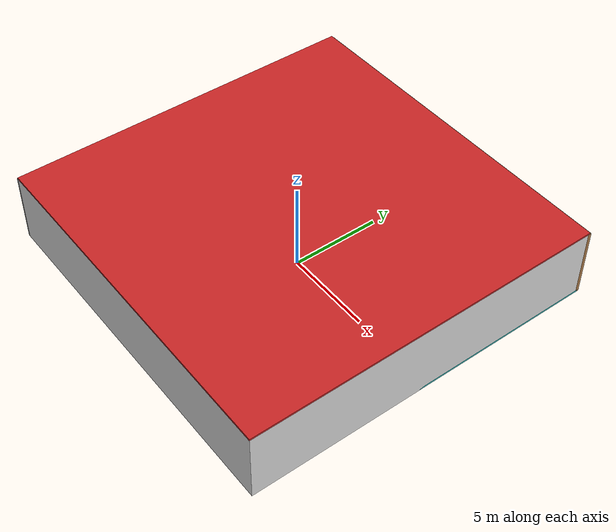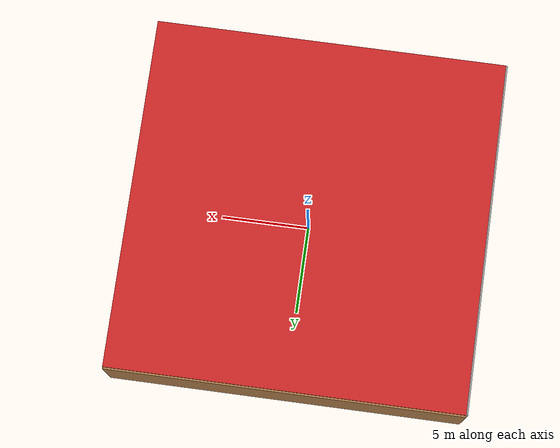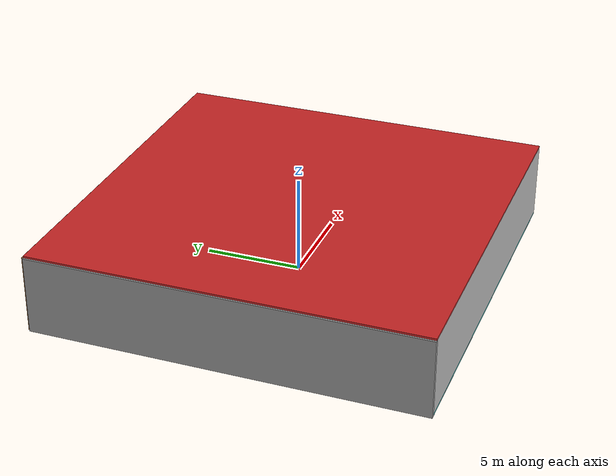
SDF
<sdf version="1.4">
 <world name="default">
  <physics type="ode">
   <max_step_size>0.001</max_step_size>
   <real_time_factor>1</real_time_factor>
   <real_time_update_rate>1000</real_time_update_rate>
   <gravity>0 0 -9.8</gravity>
  </physics>
  <scene><ambient>0.4 0.4 0.4 1</ambient><background>0.7 0.7 0.7 1</background><shadows>1</shadows></scene>
  <model name="Surrounding">
   <static>1</static>
   <link name="Ceiling">
    <collision name="Ceiling_Collision"><geometry><box><size>20 20 0.1</size></box></geometry></collision>
    <visual name="Ceiling_Visual">
     <geometry><box><size>20 20 0.1</size></box></geometry>
     <material>
      <script><uri>file://media/materials/scripts/gazebo.material</uri><name>Gazebo/Red</name></script>
     </material>
    </visual>
    <pose>0 0 4.05 0 0 0</pose>
   </link>
   <link name="Wall_South">
    <collision name="Wall_South_Collision">
     <geometry><box><size>20 0 4</size></box></geometry>
     <pose>0 0 2 0 -0 0</pose>
    </collision>
    <visual name="Wall_South_Visual">
     <pose>0 0 2 0 -0 0</pose>
     <geometry><box><size>20 0 4</size></box></geometry>
     <material>
      <script><uri>file://media/materials/scripts/gazebo.material</uri><name>Gazebo/PioneerBody</name></script>
     </material>
    </visual>
    <velocity_decay><linear>0</linear><angular>0</angular></velocity_decay>
    <pose>0 -10 0 0 -0 0</pose>
   </link>
   <link name="Wall_East">
    <collision name="Wall_21_Collision">
     <geometry><box><size>20 0 4</size></box></geometry>
     <pose>0 0 2 0 -0 0</pose>
    </collision>
    <visual name="Wall_21_Visual">
     <pose>0 0 2 0 -0 0</pose>
     <geometry><box><size>20 0 4</size></box></geometry>
     <material>
      <script><uri>file://media/materials/scripts/gazebo.material</uri><name>Gazebo/White</name></script>
     </material>
    </visual>
    <velocity_decay><linear>0</linear><angular>0</angular></velocity_decay>
    <pose>10 0 0 0 -0 1.5708</pose>
   </link>
   <link name="Wall_North">
    <collision name="Wall_22_Collision">
     <geometry><box><size>20 0.2 4</size></box></geometry>
     <pose>0 0 2 0 -0 0</pose>
    </collision>
    <visual name="Wall_22_Visual">
     <pose>0 0 2 0 -0 0</pose>
     <geometry><box><size>20 0.2 4</size></box></geometry>
     <material>
      <script><uri>file://media/materials/scripts/gazebo.material</uri><name>Gazebo/WoodFloor</name></script>
     </material>
    </visual>
    <velocity_decay><linear>0</linear><angular>0</angular></velocity_decay>
    <pose>0 10 0 0 -0 0</pose>
   </link>
   <link name="Wall_West">
    <collision name="Wall_23_Collision">
     <geometry><box><size>20 0.2 4</size></box></geometry>
     <pose>0 0 2 0 -0 0</pose>
    </collision>
    <visual name="Wall_23_Visual">
     <pose>0 0 2 0 -0 0</pose>
     <geometry><box><size>20 0.2 4</size></box></geometry>
     <material>
      <script><uri>file://media/materials/scripts/gazebo.material</uri><name>Gazebo/GreyGradientSky</name></script>
     </material>
    </visual>
    <velocity_decay><linear>0</linear><angular>0</angular></velocity_decay>
    <pose>-10 0 0 0 0 -1.5708</pose>
   </link>
   <link name="Ground_link">
    <collision name="collision">
     <pose>0 0 .05 0 -0 0</pose>
     <geometry><box><size>20 20 0.1</size></box></geometry>
    </collision>
    <visual name="visual">
     <pose>0 0 .05 0 -0 0</pose>
     <geometry><box><size>20 20 0.1</size></box></geometry>
     <material>
      <script><uri>file://media/materials/scripts/gazebo.material</uri><name>Gazebo/Turquoise</name></script>
     </material>
    </visual>
   </link>
   <static>1</static>
  </model>
  <spherical_coordinates>
   <surface_model>EARTH_WGS84</surface_model>
   <latitude_deg>0</latitude_deg>
   <longitude_deg>0</longitude_deg>
   <elevation>0</elevation>
   <heading_deg>0</heading_deg>
  </spherical_coordinates>
  <light name="lightball_0" type="diffuse">
   <diffuse>0.8 0.8 0.8 1</diffuse>
   <specular>0.2 0.2 0.2 1</specular>
   <attenuation>
    <range>100</range>
    <constant>0.7</constant>
    <linear>0.01</linear>
    <quadratic>0.001</quadratic>
   </attenuation>
   <direction>-0.5 0.1 -0.9</direction>
   <pose>-8.73605735671 4.80617238505 2.11559267147 0 0 0</pose>
  </light>
  <light name="lightball_1" type="diffuse">
   <diffuse>0.8 0.8 0.8 1</diffuse>
   <specular>0.2 0.2 0.2 1</specular>
   <attenuation>
    <range>100</range>
    <constant>0.7</constant>
    <linear>0.01</linear>
    <quadratic>0.001</quadratic>
   </attenuation>
   <direction>-0.5 0.1 -0.9</direction>
   <pose>4.18122557312 1.09027923376 0.699549429194 0 0 0</pose>
  </light>
  <light name="lightball_2" type="diffuse">
   <diffuse>0.8 0.8 0.8 1</diffuse>
   <specular>0.2 0.2 0.2 1</specular>
   <attenuation>
    <range>100</range>
    <constant>0.7</constant>
    <linear>0.01</linear>
    <quadratic>0.001</quadratic>
   </attenuation>
   <direction>-0.5 0.1 -0.9</direction>
   <pose>9.25345311462 -9.51107402794 2.56303314025 0 0 0</pose>
  </light>
  <light name="lightball_3" type="diffuse">
   <diffuse>0.8 0.8 0.8 1</diffuse>
   <specular>0.2 0.2 0.2 1</specular>
   <attenuation>
    <range>100</range>
    <constant>0.7</constant>
    <linear>0.01</linear>
    <quadratic>0.001</quadratic>
   </attenuation>
   <direction>-0.5 0.1 -0.9</direction>
   <pose>-9.37392994986 6.98129819819 1.61777762869 0 0 0</pose>
  </light>
  <light name="lightball_4" type="diffuse">
   <diffuse>0.8 0.8 0.8 1</diffuse>
   <specular>0.2 0.2 0.2 1</specular>
   <attenuation>
    <range>100</range>
    <constant>0.7</constant>
    <linear>0.01</linear>
    <quadratic>0.001</quadratic>
   </attenuation>
   <direction>-0.5 0.1 -0.9</direction>
   <pose>8.79882031217 -6.73995671174 2.66348895097 0 0 0</pose>
  </light>
  <light name="lightball_5" type="diffuse">
   <diffuse>0.8 0.8 0.8 1</diffuse>
   <specular>0.2 0.2 0.2 1</specular>
   <attenuation>
    <range>100</range>
    <constant>0.7</constant>
    <linear>0.01</linear>
    <quadratic>0.001</quadratic>
   </attenuation>
   <direction>-0.5 0.1 -0.9</direction>
   <pose>-4.29189091381 8.03208370672 2.00341280625 0 0 0</pose>
  </light>
  <light name="lightball_6" type="diffuse">
   <diffuse>0.8 0.8 0.8 1</diffuse>
   <specular>0.2 0.2 0.2 1</specular>
   <attenuation>
    <range>100</range>
    <constant>0.7</constant>
    <linear>0.01</linear>
    <quadratic>0.001</quadratic>
   </attenuation>
   <direction>-0.5 0.1 -0.9</direction>
   <pose>-5.94555290288 -2.36336461343 2.53589727853 0 0 0</pose>
  </light>
  <include><uri>model://cabinet</uri><pose>-1.13740962267 -7.0971140107 0 0 0 0.017538491237</pose></include>
  <include>
   <uri>model://first_2015_trash_can</uri>
   <pose>1.37540936215 -1.7422030487 0 0 0 2.53084846338</pose>
  </include>
  <include><uri>model://table</uri><pose>4.14571754548 -1.17155930979 0 0 0 0.00919356071005</pose></include>
 </world>
</sdf>

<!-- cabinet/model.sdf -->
<sdf version="1.5">
  <model name="cabinet">
    <static>true</static>
    <link name="cabinet_bottom_plate">
      <inertial>
        <pose>0 0 -1 0 0 0</pose>
        <inertia>
          <ixx>2.050000</ixx>
          <ixy>0</ixy>
          <ixz>0</ixz>
          <iyy>2.050000</iyy>
          <iyz>0</iyz>
          <izz>2.050000</izz>
        </inertia>
        <mass>25.000000</mass>
      </inertial>
      <collision name="cabinet_bottom_plate_geom">
        <pose>0 0 0.010000 0 0 0</pose>
        <geometry>
          <box>
            <size>0.450000 0.450000 0.020000</size>
          </box>
        </geometry>
      </collision>
      <visual name="cabinet_bottom_plate_geom_visual">
        <pose>0 0 0.010000 0 0 0</pose>
        <geometry>
          <box>
            <size>0.450000 0.450000 0.020000</size>
          </box>
        </geometry>
        <material>
          <script>
            <uri>model://media/materials/scripts/gazebo.material</uri>
            <name>Gazebo/Wood</name>
          </script>
        </material>
      </visual>
      <collision name="cabinet_bottom_plate_geom_cabinet_back_plate">
        <pose>0.235000 0 0.510000 0 0 0</pose>
        <geometry>
          <box>
            <size>0.020000 0.450000 1.020000</size>
          </box>
        </geometry>
      </collision>
      <visual name="cabinet_bottom_plate_geom_cabinet_back_plate_visual">
        <pose>0.235000 0 0.510000 0 0 0</pose>
        <geometry>
          <box>
            <size>0.020000 0.450000 1.020000</size>
          </box>
        </geometry>
        <material>
          <script>
            <uri>model://media/materials/scripts/gazebo.material</uri>
            <name>Gazebo/Wood</name>
          </script>
        </material>
      </visual>
      <collision name="cabinet_bottom_plate_geom_cabinet_left_plate">
        <pose>0 0.235000 0.510000 0 0 0</pose>
        <geometry>
          <box>
            <size>0.450000 0.020000 1.020000</size>
          </box>
        </geometry>
      </collision>
      <visual name="cabinet_bottom_plate_geom_cabinet_left_plate_visual">
        <pose>0 0.235000 0.510000 0 0 0</pose>
        <geometry>
          <box>
            <size>0.450000 0.020000 1.020000</size>
          </box>
        </geometry>
        <material>
          <script>
            <uri>model://media/materials/scripts/gazebo.material</uri>
            <name>Gazebo/Wood</name>
          </script>
        </material>
      </visual>
      <collision name="cabinet_bottom_plate_geom_cabinet_middle_plate">
        <pose>0 0 0.510000 0 0 0</pose>
        <geometry>
          <box>
            <size>0.450000 0.450000 0.020000</size>
          </box>
        </geometry>
      </collision>
      <visual name="cabinet_bottom_plate_geom_cabinet_middle_plate_visual">
        <pose>0 0 0.510000 0 0 0</pose>
        <geometry>
          <box>
            <size>0.450000 0.450000 0.020000</size>
          </box>
        </geometry>
        <material>
          <script>
            <uri>model://media/materials/scripts/gazebo.material</uri>
            <name>Gazebo/Wood</name>
          </script>
        </material>
      </visual>
      <collision name="cabinet_bottom_plate_geom_cabinet_right_plate">
        <pose>0 -0.235000 0.510000 0 0 0</pose>
        <geometry>
          <box>
            <size>0.450000 0.020000 1.020000</size>
          </box>
        </geometry>
      </collision>
      <visual name="cabinet_bottom_plate_geom_cabinet_right_plate_visual">
        <pose>0 -0.235000 0.510000 0 0 0</pose>
        <geometry>
          <box>
            <size>0.450000 0.020000 1.020000</size>
          </box>
        </geometry>
        <material>
          <script>
            <uri>model://media/materials/scripts/gazebo.material</uri>
            <name>Gazebo/Wood</name>
          </script>
        </material>
      </visual>
      <collision name="cabinet_bottom_plate_geom_cabinet_top_plate">
        <pose>0 0 1.010000 0 0 0</pose>
        <geometry>
          <box>
            <size>0.450000 0.450000 0.020000</size>
          </box>
        </geometry>
      </collision>
      <visual name="cabinet_bottom_plate_geom_cabinet_top_plate_visual">
        <pose>0 0 1.010000 0 0 0</pose>
        <geometry>
          <box>
            <size>0.450000 0.450000 0.020000</size>
          </box>
        </geometry>
        <material>
          <script>
            <uri>model://media/materials/scripts/gazebo.material</uri>
            <name>Gazebo/Wood</name>
          </script>
        </material>
      </visual>
    </link>
  </model>
</sdf>

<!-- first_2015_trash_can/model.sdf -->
<sdf version="1.5">
  <model name="first_2015_trash_can">
    <link name="link">
      <inertial>
        <pose>0 0 0.3683 0 0 0</pose>
        <mass>4.83076</mass>
        <inertia>
          <ixx>0.281534052</ixx>
          <ixy>0</ixy>
          <ixz>0</ixz>
          <iyy>0.281534052</iyy>
          <iyz>0</iyz>
          <izz>0.126222831</izz>
        </inertia>
      </inertial>

      <visual name="visual">
        <geometry>
          <mesh>
            <uri>model://first_2015_trash_can/meshes/trash_can.dae</uri>
          </mesh>
        </geometry>
      </visual>

      <collision name="collision">
        <geometry>
          <mesh>
            <uri>model://first_2015_trash_can/meshes/trash_can.dae</uri>
          </mesh>
        </geometry>
      </collision>
    </link>
  </model>
</sdf>

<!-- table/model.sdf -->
<sdf version="1.5">
  <model name="table">
    <static>true</static>
    <link name="link">
      <collision name="surface">
        <pose>0 0 1.0 0 0 0</pose>
        <geometry>
          <box>
            <size>1.5 0.8 0.03</size>
          </box>
        </geometry>
        <surface>
          <friction>
            <ode>
              <mu>0.6</mu>
              <mu2>0.6</mu2>
            </ode>
          </friction>
        </surface>
      </collision>
      <visual name="visual1">
        <pose>0 0 1.0 0 0 0</pose>
        <geometry>
          <box>
            <size>1.5 0.8 0.03</size>
          </box>
        </geometry>
        <material>
          <script>
            <uri>model://media/materials/scripts/gazebo.material</uri>
            <name>Gazebo/Wood</name>
          </script>
        </material>
      </visual>
      <collision name="front_left_leg">
        <pose>0.68 0.38 0.5 0 0 0</pose>
        <geometry>
          <cylinder>
            <radius>0.02</radius>
            <length>1.0</length>
          </cylinder>
        </geometry>
      </collision>
      <visual name="front_left_leg">
        <pose>0.68 0.38 0.5 0 0 0</pose>
        <geometry>
          <cylinder>
            <radius>0.02</radius>
            <length>1.0</length>
          </cylinder>
        </geometry>
        <material>
          <script>
            <uri>model://media/materials/scripts/gazebo.material</uri>
            <name>Gazebo/Grey</name>
          </script>
        </material>
      </visual>
      <collision name="front_right_leg">
        <pose>0.68 -0.38 0.5 0 0 0</pose>
        <geometry>
          <cylinder>
            <radius>0.02</radius>
            <length>1.0</length>
          </cylinder>
        </geometry>
      </collision>
      <visual name="front_right_leg">
        <pose>0.68 -0.38 0.5 0 0 0</pose>
        <geometry>
          <cylinder>
            <radius>0.02</radius>
            <length>1.0</length>
          </cylinder>
        </geometry>
        <material>
          <script>
            <uri>model://media/materials/scripts/gazebo.material</uri>
            <name>Gazebo/Grey</name>
          </script>
        </material>
      </visual>
      <collision name="back_right_leg">
        <pose>-0.68 -0.38 0.5 0 0 0</pose>
        <geometry>
          <cylinder>
            <radius>0.02</radius>
            <length>1.0</length>
          </cylinder>
        </geometry>
      </collision>
      <visual name="back_right_leg">
        <pose>-0.68 -0.38 0.5 0 0 0</pose>
        <geometry>
          <cylinder>
            <radius>0.02</radius>
            <length>1.0</length>
          </cylinder>
        </geometry>
        <material>
          <script>
            <uri>model://media/materials/scripts/gazebo.material</uri>
            <name>Gazebo/Grey</name>
          </script>
        </material>
      </visual>
      <collision name="back_left_leg">
        <pose>-0.68 0.38 0.5 0 0 0</pose>
        <geometry>
          <cylinder>
            <radius>0.02</radius>
            <length>1.0</length>
          </cylinder>
        </geometry>
      </collision>
      <visual name="back_left_leg">
        <pose>-0.68 0.38 0.5 0 0 0</pose>
        <geometry>
          <cylinder>
            <radius>0.02</radius>
            <length>1.0</length>
          </cylinder>
        </geometry>
        <material>
          <script>
            <uri>model://media/materials/scripts/gazebo.material</uri>
            <name>Gazebo/Grey</name>
          </script>
        </material>
      </visual>
    </link>
  </model>
</sdf>
